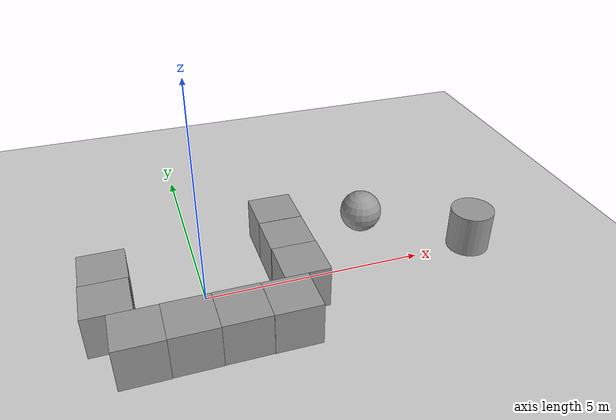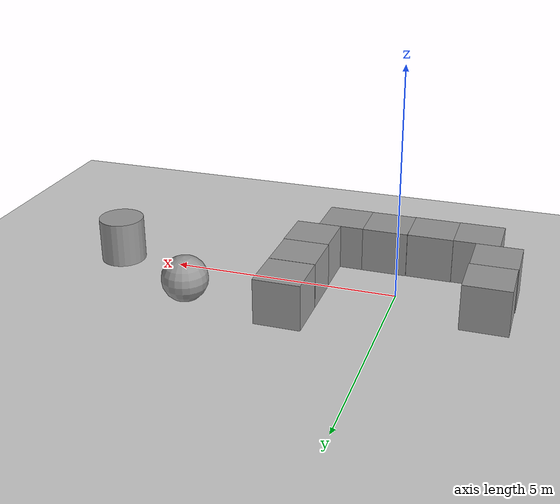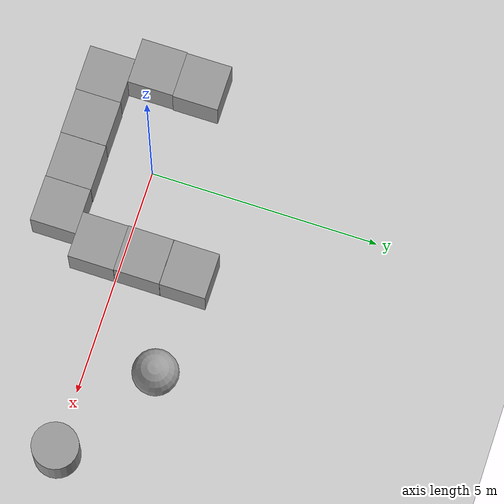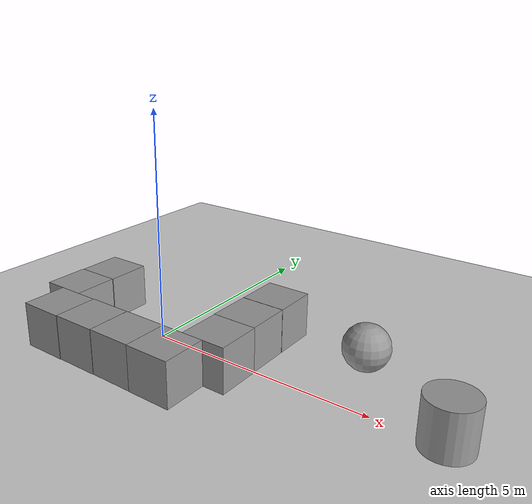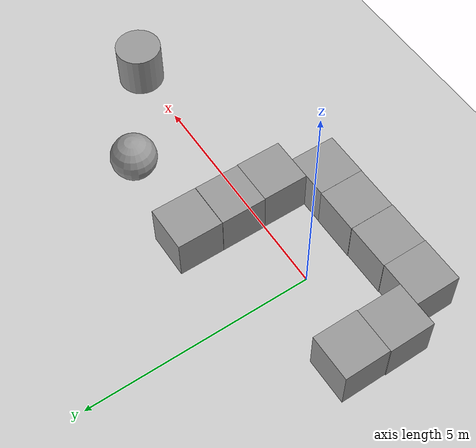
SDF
<sdf version="1.6">
 <world name="default">
  <light name="sun" type="directional">
   <pose>0 0 10 0 -0 0</pose>
   <diffuse>0.8 0.8 0.8 1</diffuse>
   <specular>0.1 0.1 0.1 1</specular>
   <attenuation>
    <range>1000</range>
    <constant>0.9</constant>
    <linear>0.01</linear>
    <quadratic>0.001</quadratic>
   </attenuation>
   <direction>-0.5 0.5 -1</direction>
  </light>
  <model name="ground_plane">
   <static>1</static>
   <link name="link">
    <collision name="collision">
     <geometry><plane><normal>0 0 1</normal><size>100 100</size></plane></geometry>
     <surface><friction><ode><mu>100</mu><mu2>50</mu2></ode></friction></surface>
    </collision>
    <visual name="visual">
     <cast_shadows>0</cast_shadows>
     <geometry><plane><normal>0 0 1</normal><size>100 100</size></plane></geometry>
     <material>
      <script><uri>file://media/materials/scripts/gazebo.material</uri><name>Gazebo/Grey</name></script>
     </material>
    </visual>
   </link>
  </model>
  <gravity>0 0 -9.8</gravity>
  <magnetic_field>6e-06 2.3e-05 -4.2e-05</magnetic_field>
  <atmosphere type="adiabatic"/>
  <physics name="default_physics" default="0" type="ode">
   <max_step_size>0.001</max_step_size>
   <real_time_factor>1</real_time_factor>
   <real_time_update_rate>1000</real_time_update_rate>
  </physics>
  <scene><ambient>0.4 0.4 0.4 1</ambient><background>0.7 0.7 0.7 1</background><shadows>1</shadows></scene>
  <spherical_coordinates>
   <surface_model>EARTH_WGS84</surface_model>
   <latitude_deg>0</latitude_deg>
   <longitude_deg>0</longitude_deg>
   <elevation>0</elevation>
   <heading_deg>0</heading_deg>
  </spherical_coordinates>
  <model name="unit_box_0">
   <pose>0.4913 -1.50114 0.499995 0 1e-05 8.9e-05</pose>
   <link name="link">
    <inertial>
     <mass>1</mass>
     <inertia>
      <ixx>0.166667</ixx>
      <ixy>0</ixy>
      <ixz>0</ixz>
      <iyy>0.166667</iyy>
      <iyz>0</iyz>
      <izz>0.166667</izz>
     </inertia>
    </inertial>
    <collision name="collision"><geometry><box><size>1 1 1</size></box></geometry></collision>
    <visual name="visual">
     <geometry><box><size>1 1 1</size></box></geometry>
     <material>
      <script><name>Gazebo/Grey</name><uri>file://media/materials/scripts/gazebo.material</uri></script>
     </material>
    </visual>
   </link>
  </model>
  <model name="unit_box_1">
   <pose>-0.509638 -1.50977 0.499995 0 1e-05 0.001905</pose>
   <link name="link">
    <inertial>
     <mass>1</mass>
     <inertia>
      <ixx>0.166667</ixx>
      <ixy>0</ixy>
      <ixz>0</ixz>
      <iyy>0.166667</iyy>
      <iyz>0</iyz>
      <izz>0.166667</izz>
     </inertia>
    </inertial>
    <collision name="collision"><geometry><box><size>1 1 1</size></box></geometry></collision>
    <visual name="visual">
     <geometry><box><size>1 1 1</size></box></geometry>
     <material>
      <script><name>Gazebo/Grey</name><uri>file://media/materials/scripts/gazebo.material</uri></script>
     </material>
    </visual>
   </link>
  </model>
  <model name="unit_box_2">
   <pose>-1.50962 -1.52197 0.499995 0 1e-05 0.001904</pose>
   <link name="link">
    <inertial>
     <mass>1</mass>
     <inertia>
      <ixx>0.166667</ixx>
      <ixy>0</ixy>
      <ixz>0</ixz>
      <iyy>0.166667</iyy>
      <iyz>0</iyz>
      <izz>0.166667</izz>
     </inertia>
    </inertial>
    <collision name="collision"><geometry><box><size>1 1 1</size></box></geometry></collision>
    <visual name="visual">
     <geometry><box><size>1 1 1</size></box></geometry>
     <material>
      <script><name>Gazebo/Grey</name><uri>file://media/materials/scripts/gazebo.material</uri></script>
     </material>
    </visual>
   </link>
  </model>
  <model name="unit_box_3">
   <pose>1.49164 -1.50701 0.499995 -1e-05 -0 -0.000482</pose>
   <link name="link">
    <inertial>
     <mass>1</mass>
     <inertia>
      <ixx>0.166667</ixx>
      <ixy>0</ixy>
      <ixz>0</ixz>
      <iyy>0.166667</iyy>
      <iyz>0</iyz>
      <izz>0.166667</izz>
     </inertia>
    </inertial>
    <collision name="collision"><geometry><box><size>1 1 1</size></box></geometry></collision>
    <visual name="visual">
     <geometry><box><size>1 1 1</size></box></geometry>
     <material>
      <script><name>Gazebo/Grey</name><uri>file://media/materials/scripts/gazebo.material</uri></script>
     </material>
    </visual>
   </link>
  </model>
  <model name="unit_box_4">
   <pose>-1.99632 -0.522791 0.499995 -1e-05 0 0.002766</pose>
   <link name="link">
    <inertial>
     <mass>1</mass>
     <inertia>
      <ixx>0.166667</ixx>
      <ixy>0</ixy>
      <ixz>0</ixz>
      <iyy>0.166667</iyy>
      <iyz>0</iyz>
      <izz>0.166667</izz>
     </inertia>
    </inertial>
    <collision name="collision"><geometry><box><size>1 1 1</size></box></geometry></collision>
    <visual name="visual">
     <geometry><box><size>1 1 1</size></box></geometry>
     <material>
      <script><name>Gazebo/Grey</name><uri>file://media/materials/scripts/gazebo.material</uri></script>
     </material>
    </visual>
   </link>
  </model>
  <model name="unit_box_5">
   <pose>-1.98331 0.477262 0.499995 0 1e-05 0.002775</pose>
   <link name="link">
    <inertial>
     <mass>1</mass>
     <inertia>
      <ixx>0.166667</ixx>
      <ixy>0</ixy>
      <ixz>0</ixz>
      <iyy>0.166667</iyy>
      <iyz>0</iyz>
      <izz>0.166667</izz>
     </inertia>
    </inertial>
    <collision name="collision"><geometry><box><size>1 1 1</size></box></geometry></collision>
    <visual name="visual">
     <geometry><box><size>1 1 1</size></box></geometry>
     <material>
      <script><name>Gazebo/Grey</name><uri>file://media/materials/scripts/gazebo.material</uri></script>
     </material>
    </visual>
   </link>
  </model>
  <model name="unit_box_6">
   <pose>1.99301 -0.507249 0.499995 0 1e-05 -0.000511</pose>
   <link name="link">
    <inertial>
     <mass>1</mass>
     <inertia>
      <ixx>0.166667</ixx>
      <ixy>0</ixy>
      <ixz>0</ixz>
      <iyy>0.166667</iyy>
      <iyz>0</iyz>
      <izz>0.166667</izz>
     </inertia>
    </inertial>
    <collision name="collision"><geometry><box><size>1 1 1</size></box></geometry></collision>
    <visual name="visual">
     <geometry><box><size>1 1 1</size></box></geometry>
     <material>
      <script><name>Gazebo/Grey</name><uri>file://media/materials/scripts/gazebo.material</uri></script>
     </material>
    </visual>
   </link>
  </model>
  <model name="unit_box_7">
   <pose>1.983 0.49281 0.499995 -0 1e-05 -0.000523</pose>
   <link name="link">
    <inertial>
     <mass>1</mass>
     <inertia>
      <ixx>0.166667</ixx>
      <ixy>0</ixy>
      <ixz>0</ixz>
      <iyy>0.166667</iyy>
      <iyz>0</iyz>
      <izz>0.166667</izz>
     </inertia>
    </inertial>
    <collision name="collision"><geometry><box><size>1 1 1</size></box></geometry></collision>
    <visual name="visual">
     <geometry><box><size>1 1 1</size></box></geometry>
     <material>
      <script><name>Gazebo/Grey</name><uri>file://media/materials/scripts/gazebo.material</uri></script>
     </material>
    </visual>
   </link>
  </model>
  <model name="unit_box_8">
   <pose>1.98405 1.49711 0.499995 1e-05 -0 0</pose>
   <link name="link">
    <inertial>
     <mass>1</mass>
     <inertia>
      <ixx>0.166667</ixx>
      <ixy>0</ixy>
      <ixz>0</ixz>
      <iyy>0.166667</iyy>
      <iyz>0</iyz>
      <izz>0.166667</izz>
     </inertia>
    </inertial>
    <collision name="collision"><geometry><box><size>1 1 1</size></box></geometry></collision>
    <visual name="visual">
     <geometry><box><size>1 1 1</size></box></geometry>
     <material>
      <script><name>Gazebo/Grey</name><uri>file://media/materials/scripts/gazebo.material</uri></script>
     </material>
    </visual>
   </link>
  </model>
  <model name="unit_sphere_0">
   <pose>4.18266 1.46908 0.5 0 -0 0</pose>
   <link name="link">
    <inertial>
     <mass>1</mass>
     <inertia><ixx>0.1</ixx><ixy>0</ixy><ixz>0</ixz><iyy>0.1</iyy><iyz>0</iyz><izz>0.1</izz></inertia>
    </inertial>
    <collision name="collision"><geometry><sphere><radius>0.5</radius></sphere></geometry></collision>
    <visual name="visual">
     <geometry><sphere><radius>0.5</radius></sphere></geometry>
     <material>
      <script><name>Gazebo/Grey</name><uri>file://media/materials/scripts/gazebo.material</uri></script>
     </material>
    </visual>
   </link>
  </model>
  <model name="unit_cylinder_0">
   <pose>6.38277 0.036041 0.499993 -3e-06 -3e-06 0</pose>
   <link name="link">
    <inertial>
     <mass>1</mass>
     <inertia><ixx>0.145833</ixx><ixy>0</ixy><ixz>0</ixz><iyy>0.145833</iyy><iyz>0</iyz><izz>0.125</izz></inertia>
    </inertial>
    <collision name="collision">
     <geometry><cylinder><radius>0.5</radius><length>1</length></cylinder></geometry>
    </collision>
    <visual name="visual">
     <geometry><cylinder><radius>0.5</radius><length>1</length></cylinder></geometry>
     <material>
      <script><name>Gazebo/Grey</name><uri>file://media/materials/scripts/gazebo.material</uri></script>
     </material>
    </visual>
   </link>
  </model>
 </world>
</sdf>
